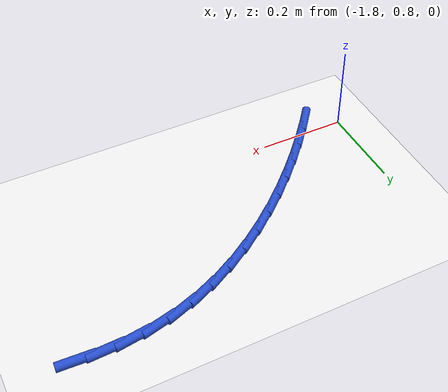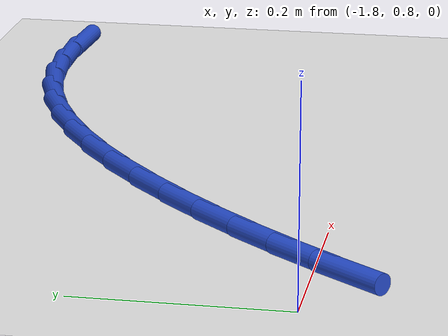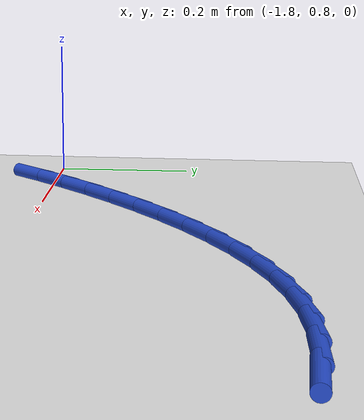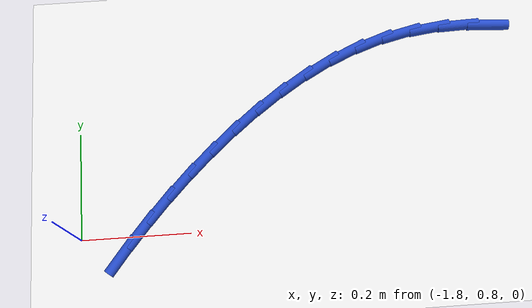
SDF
<sdf version="1.6">
 <world name="default">
  <model name="ground_plane">
   <static>1</static>
   <link name="link">
    <collision name="collision">
     <geometry><plane><normal>0 0 1</normal><size>100 100</size></plane></geometry>
     <surface><friction><ode><mu>100</mu><mu2>50</mu2></ode></friction></surface>
    </collision>
    <visual name="visual">
     <cast_shadows>0</cast_shadows>
     <geometry><plane><normal>0 0 1</normal><size>100 100</size></plane></geometry>
     <material>
      <script><uri>file://media/materials/scripts/gazebo.material</uri><name>Gazebo/WhiteGlow</name></script>
     </material>
    </visual>
   </link>
  </model>
  <model name="line">
   <link name="link_29">
    <pose>-1.0129882196451776 1.1643640216973905 0.01 0 1.57 -0.054744182359573956</pose>
    <collision name="collision">
     <geometry><cylinder><radius>0.01</radius><length>0.08</length></cylinder></geometry>
    </collision>
    <visual name="visual">
     <material>
      <script><name>Gazebo/Blue</name><uri>file://media/materials/scripts/gazebo.material</uri></script>
     </material>
     <geometry><cylinder><radius>0.01</radius><length>0.08</length></cylinder></geometry>
    </visual>
   </link>
   <link name="link_30">
    <pose>-1.0697453155352532 1.1674742501669513 0.01 0 1.57 0.03448263373481747</pose>
    <collision name="collision">
     <geometry><cylinder><radius>0.01</radius><length>0.08</length></cylinder></geometry>
    </collision>
    <visual name="visual">
     <material>
      <script><name>Gazebo/Blue</name><uri>file://media/materials/scripts/gazebo.material</uri></script>
     </material>
     <geometry><cylinder><radius>0.01</radius><length>0.08</length></cylinder></geometry>
    </visual>
   </link>
   <link name="link_31">
    <pose>-1.1259921244176618 1.1655339429544618 0.01 0 1.57 0.13220462408820147</pose>
    <collision name="collision">
     <geometry><cylinder><radius>0.01</radius><length>0.08</length></cylinder></geometry>
    </collision>
    <visual name="visual">
     <material>
      <script><name>Gazebo/Blue</name><uri>file://media/materials/scripts/gazebo.material</uri></script>
     </material>
     <geometry><cylinder><radius>0.01</radius><length>0.08</length></cylinder></geometry>
    </visual>
   </link>
   <link name="link_32">
    <pose>-1.1813998620675716 1.1581658068098502 0.01 0 1.57 0.23758793696722316</pose>
    <collision name="collision">
     <geometry><cylinder><radius>0.01</radius><length>0.08</length></cylinder></geometry>
    </collision>
    <visual name="visual">
     <material>
      <script><name>Gazebo/Blue</name><uri>file://media/materials/scripts/gazebo.material</uri></script>
     </material>
     <geometry><cylinder><radius>0.01</radius><length>0.08</length></cylinder></geometry>
    </visual>
   </link>
   <link name="link_33">
    <pose>-1.2356479523265165 1.1450289974072718 0.01 0 1.57 0.3397715405240429</pose>
    <collision name="collision">
     <geometry><cylinder><radius>0.01</radius><length>0.08</length></cylinder></geometry>
    </collision>
    <visual name="visual">
     <material>
      <script><name>Gazebo/Blue</name><uri>file://media/materials/scripts/gazebo.material</uri></script>
     </material>
     <geometry><cylinder><radius>0.01</radius><length>0.08</length></cylinder></geometry>
    </visual>
   </link>
   <link name="link_34">
    <pose>-1.2885397106875682 1.1263328264767547 0.01 0 1.57 0.43050164275224484</pose>
    <collision name="collision">
     <geometry><cylinder><radius>0.01</radius><length>0.08</length></cylinder></geometry>
    </collision>
    <visual name="visual">
     <material>
      <script><name>Gazebo/Blue</name><uri>file://media/materials/scripts/gazebo.material</uri></script>
     </material>
     <geometry><cylinder><radius>0.01</radius><length>0.08</length></cylinder></geometry>
    </visual>
   </link>
   <link name="link_35">
    <pose>-1.3399743773200532 1.102712571024393 0.01 0 1.57 0.5099623352253531</pose>
    <collision name="collision">
     <geometry><cylinder><radius>0.01</radius><length>0.08</length></cylinder></geometry>
    </collision>
    <visual name="visual">
     <material>
      <script><name>Gazebo/Blue</name><uri>file://media/materials/scripts/gazebo.material</uri></script>
     </material>
     <geometry><cylinder><radius>0.01</radius><length>0.08</length></cylinder></geometry>
    </visual>
   </link>
   <link name="link_36">
    <pose>-1.3898536920424986 1.0748146080547765 0.01 0 1.57 0.5790321912592692</pose>
    <collision name="collision">
     <geometry><cylinder><radius>0.01</radius><length>0.08</length></cylinder></geometry>
    </collision>
    <visual name="visual">
     <material>
      <script><name>Gazebo/Blue</name><uri>file://media/materials/scripts/gazebo.material</uri></script>
     </material>
     <geometry><cylinder><radius>0.01</radius><length>0.08</length></cylinder></geometry>
    </visual>
   </link>
   <link name="link_37">
    <pose>-1.438079394673433 1.043285314572495 0.01 0 1.57 0.6387868255624438</pose>
    <collision name="collision">
     <geometry><cylinder><radius>0.01</radius><length>0.08</length></cylinder></geometry>
    </collision>
    <visual name="visual">
     <material>
      <script><name>Gazebo/Blue</name><uri>file://media/materials/scripts/gazebo.material</uri></script>
     </material>
     <geometry><cylinder><radius>0.01</radius><length>0.08</length></cylinder></geometry>
    </visual>
   </link>
   <link name="link_38">
    <pose>-1.4845532250313822 1.0087710675821377 0.01 0 1.57 0.6903101621405844</pose>
    <collision name="collision">
     <geometry><cylinder><radius>0.01</radius><length>0.08</length></cylinder></geometry>
    </collision>
    <visual name="visual">
     <material>
      <script><name>Gazebo/Blue</name><uri>file://media/materials/scripts/gazebo.material</uri></script>
     </material>
     <geometry><cylinder><radius>0.01</radius><length>0.08</length></cylinder></geometry>
    </visual>
   </link>
   <link name="link_39">
    <pose>-1.5291769229348755 0.9719182440882944 0.01 0 1.57 0.7346966895412241</pose>
    <collision name="collision">
     <geometry><cylinder><radius>0.01</radius><length>0.08</length></cylinder></geometry>
    </collision>
    <visual name="visual">
     <material>
      <script><name>Gazebo/Blue</name><uri>file://media/materials/scripts/gazebo.material</uri></script>
     </material>
     <geometry><cylinder><radius>0.01</radius><length>0.08</length></cylinder></geometry>
    </visual>
   </link>
   <link name="link_40">
    <pose>-1.5718586340053824 0.9333590973916724 0.01 0 1.57 0.7747286546799913</pose>
    <collision name="collision">
     <geometry><cylinder><radius>0.01</radius><length>0.08</length></cylinder></geometry>
    </collision>
    <visual name="visual">
     <material>
      <script><name>Gazebo/Blue</name><uri>file://media/materials/scripts/gazebo.material</uri></script>
     </material>
     <geometry><cylinder><radius>0.01</radius><length>0.08</length></cylinder></geometry>
    </visual>
   </link>
   <link name="link_41">
    <pose>-1.6126340727379354 0.8934446131656837 0.01 0 1.57 0.8122679975948038</pose>
    <collision name="collision">
     <geometry><cylinder><radius>0.01</radius><length>0.08</length></cylinder></geometry>
    </collision>
    <visual name="visual">
     <material>
      <script><name>Gazebo/Blue</name><uri>file://media/materials/scripts/gazebo.material</uri></script>
     </material>
     <geometry><cylinder><radius>0.01</radius><length>0.08</length></cylinder></geometry>
    </visual>
   </link>
   <link name="link_42">
    <pose>-1.65165642184655 0.8522667796785421 0.01 0 1.57 0.8471356008751919</pose>
    <collision name="collision">
     <geometry><cylinder><radius>0.01</radius><length>0.08</length></cylinder></geometry>
    </collision>
    <visual name="visual">
     <material>
      <script><name>Gazebo/Blue</name><uri>file://media/materials/scripts/gazebo.material</uri></script>
     </material>
     <geometry><cylinder><radius>0.01</radius><length>0.08</length></cylinder></geometry>
    </visual>
   </link>
   <link name="link_43">
    <pose>-1.6890832454072864 0.8099079250417807 0.01 0 1.57 0.8791317822805732</pose>
    <collision name="collision">
     <geometry><cylinder><radius>0.01</radius><length>0.08</length></cylinder></geometry>
    </collision>
    <visual name="visual">
     <material>
      <script><name>Gazebo/Blue</name><uri>file://media/materials/scripts/gazebo.material</uri></script>
     </material>
     <geometry><cylinder><radius>0.01</radius><length>0.08</length></cylinder></geometry>
    </visual>
   </link>
   <link name="link_44">
    <pose>-1.725072107496203 0.7664503773669324 0.01 0 1.57 0.9081070870500895</pose>
    <collision name="collision">
     <geometry><cylinder><radius>0.01</radius><length>0.08</length></cylinder></geometry>
    </collision>
    <visual name="visual">
     <material>
      <script><name>Gazebo/Blue</name><uri>file://media/materials/scripts/gazebo.material</uri></script>
     </material>
     <geometry><cylinder><radius>0.01</radius><length>0.08</length></cylinder></geometry>
    </visual>
   </link>
  </model>
 </world>
</sdf>
